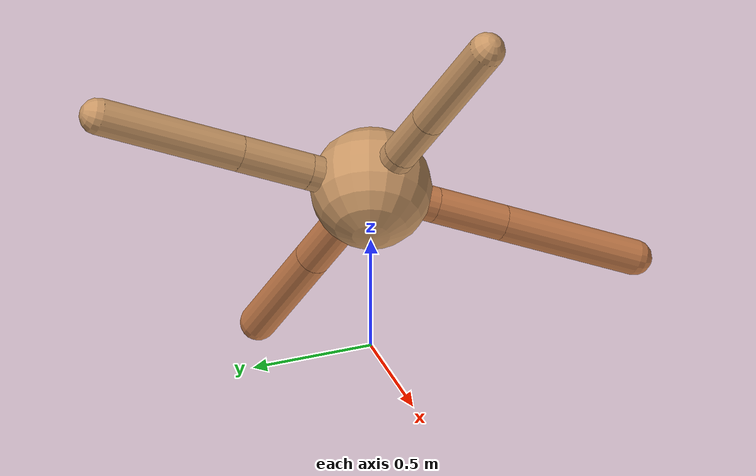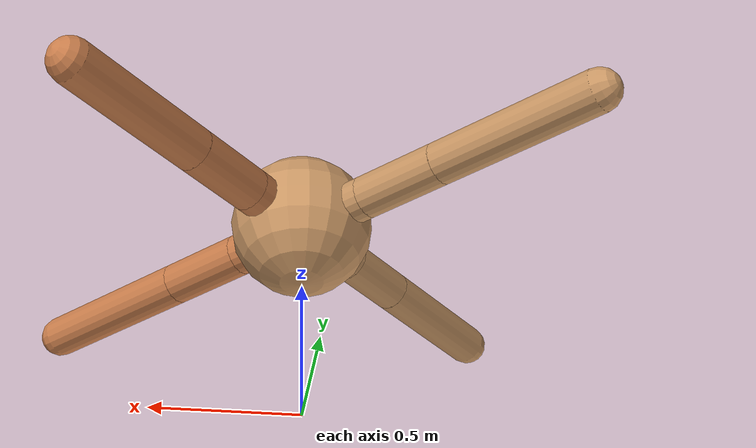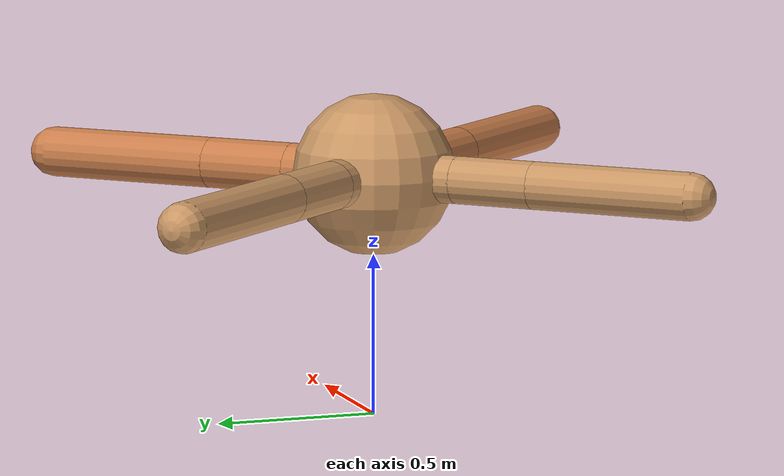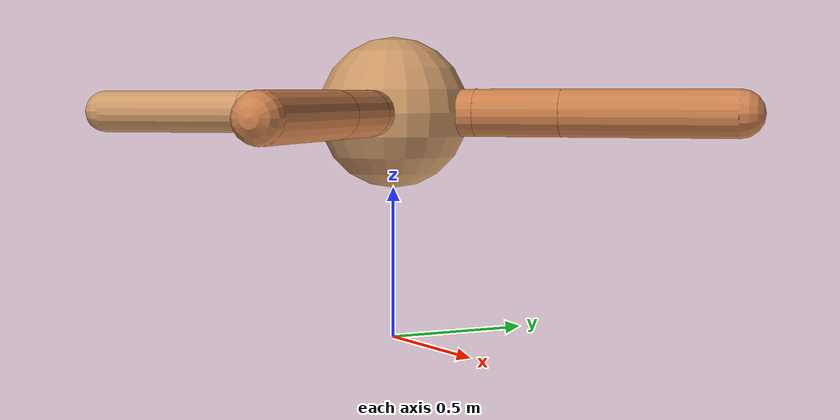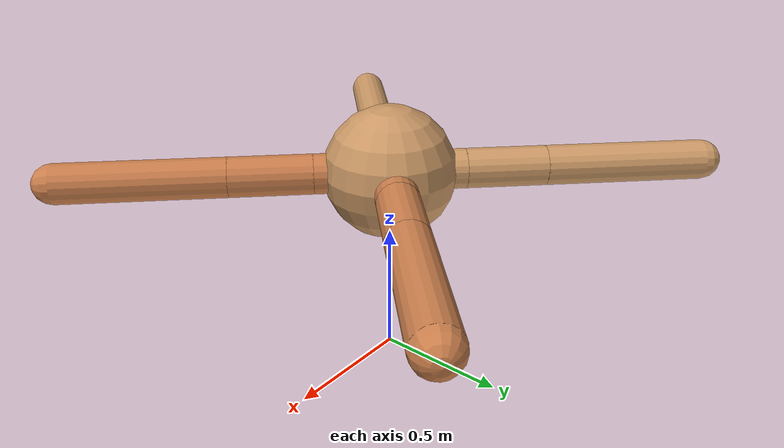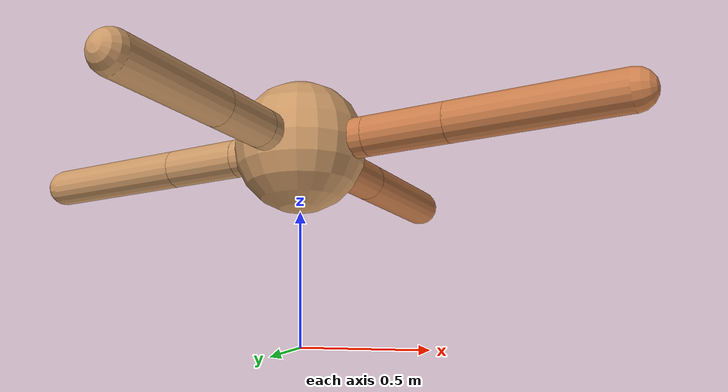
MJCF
<?xml version="1.0" ?>
<mujoco model="ant">

	<compiler angle="degree" coordinate="local" inertiafromgeom="true"/>

	<option integrator="RK4" timestep="0.01"/>

	<custom>

		<numeric data="0.0 0.0 0.55 1.0 0.0 0.0 0.0 0.0 1.0 0.0 -1.0 0.0 -1.0 0.0 1.0" name="init_qpos"/>

	</custom>

	<default>

		<joint armature="1" damping="1" limited="true"/>

		<geom conaffinity="0" condim="3" density="5.0" friction="1.5 0.1 0.1" margin="0.01" rgba="0.8 0.6 0.4 1"/>

	</default>

	<worldbody>

		<body name="torso" pos="0 0 0.75">

			<geom name="torso_geom" pos="0 0 0" size="0.2495401336368413" type="sphere"/>

			<!--joint armature="0" damping="0" limited="false" margin="0.01" name="root" pos="0 0 0" type="free"/-->

			<body name="front_left_leg" pos="0 0 0">

				<geom fromto="0 0 0 0.2 0.2 0" name="aux_1_geom" size="0.07881300844558296" type="capsule" rgba=".8 .5 .3 1"/>

				<body name="aux_1" pos="0.2 0.2 0">

					<joint axis="0 0 1" name="hip_1" pos="0.0 0.0 0.0" range="-40 40" type="hinge"/>

					<geom fromto="0 0 0 0.20056597370609974 0.20056597370609974 0" name="left_leg_geom" size="0.07881300844558296" type="capsule" rgba=".8 .5 .3 1"/>

					<body pos="0.20056597370609974 0.20056597370609974 0" name="front_left_foot">

						<joint axis="-1 1 0" name="ankle_1" pos="0.0 0.0 0.0" range="30 100" type="hinge"/>

						<geom fromto="0 0 0 0.4011319474121995 0.4011319474121995 0" name="left_ankle_geom" size="0.07881300844558296" type="capsule" rgba=".8 .5 .3 1"/>

					</body>

				</body>

			</body>

			<body name="front_right_leg" pos="0 0 0">

				<geom fromto="0 0 0 -0.2 0.2 0" name="aux_2_geom" size="0.07502473038236461" type="capsule"/>

				<body name="aux_2" pos="-0.2 0.2 0">

					<joint axis="0 0 1" name="hip_2" pos="0.0 0.0 0.0" range="-40 40" type="hinge"/>

					<geom fromto="0 0 0 -0.21488606209189554 0.21488606209189554 0" name="right_leg_geom" size="0.07502473038236461" type="capsule"/>

					<body pos="-0.21488606209189554 0.21488606209189554 0" name="front_right_foot">

						<joint axis="1 1 0" name="ankle_2" pos="0.0 0.0 0.0" range="-100 -30" type="hinge"/>

						<geom fromto="0 0 0 -0.42977212418379107 0.42977212418379107 0" name="right_ankle_geom" size="0.07502473038236461" type="capsule"/>

					</body>

				</body>

			</body>

			<body name="left_back_leg" pos="0 0 0">

				<geom fromto="0 0 0 -0.2 -0.2 0" name="aux_3_geom" size="0.07265191814209715" type="capsule"/>

				<body name="aux_3" pos="-0.2 -0.2 0">

					<joint axis="0 0 1" name="hip_3" pos="0.0 0.0 0.0" range="-40 40" type="hinge"/>

					<geom fromto="0 0 0 -0.1811142066596606 -0.1811142066596606 0" name="back_leg_geom" size="0.07265191814209715" type="capsule"/>

					<body pos="-0.1811142066596606 -0.1811142066596606 0" name="left_back_foot">

						<joint axis="-1 1 0" name="ankle_3" pos="0.0 0.0 0.0" range="-100 -30" type="hinge"/>

						<geom fromto="0 0 0 -0.3622284133193212 -0.3622284133193212 0" name="third_ankle_geom" size="0.07265191814209715" type="capsule"/>

					</body>

				</body>

			</body>

			<body name="right_back_leg" pos="0 0 0">

				<geom fromto="0 0 0 0.2 -0.2 0" name="aux_4_geom" size="0.075061911703516" type="capsule" rgba=".8 .5 .3 1"/>

				<body name="aux_4" pos="0.2 -0.2 0">

					<joint axis="0 0 1" name="hip_4" pos="0.0 0.0 0.0" range="-40 40" type="hinge"/>

					<geom fromto="0 0 0 0.21890643662352105 -0.21890643662352105 0" name="rightback_leg_geom" size="0.075061911703516" type="capsule" rgba=".8 .5 .3 1"/>

					<body pos="0.21890643662352105 -0.21890643662352105 0" name="right_back_foot">

						<joint axis="1 1 0" name="ankle_4" pos="0.0 0.0 0.0" range="30 100" type="hinge"/>

						<geom fromto="0 0 0 0.4378128732470421 -0.4378128732470421 0" name="fourth_ankle_geom" size="0.075061911703516" type="capsule" rgba=".8 .5 .3 1"/>

					</body>

				</body>

			</body>

		</body>

	</worldbody>

	<actuator>

		<motor ctrllimited="true" ctrlrange="-1.0 1.0" joint="hip_4" gear="150"/>

		<motor ctrllimited="true" ctrlrange="-1.0 1.0" joint="ankle_4" gear="150"/>

		<motor ctrllimited="true" ctrlrange="-1.0 1.0" joint="hip_1" gear="150"/>

		<motor ctrllimited="true" ctrlrange="-1.0 1.0" joint="ankle_1" gear="150"/>

		<motor ctrllimited="true" ctrlrange="-1.0 1.0" joint="hip_2" gear="150"/>

		<motor ctrllimited="true" ctrlrange="-1.0 1.0" joint="ankle_2" gear="150"/>

		<motor ctrllimited="true" ctrlrange="-1.0 1.0" joint="hip_3" gear="150"/>

		<motor ctrllimited="true" ctrlrange="-1.0 1.0" joint="ankle_3" gear="150"/>

	</actuator>

</mujoco>
